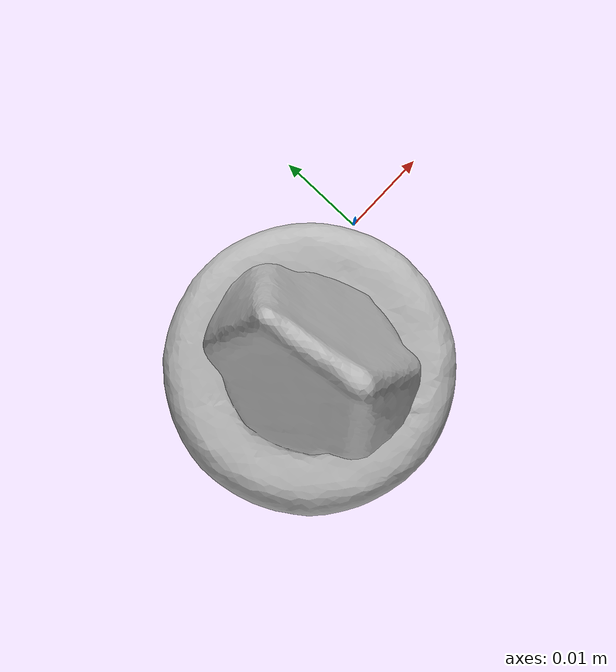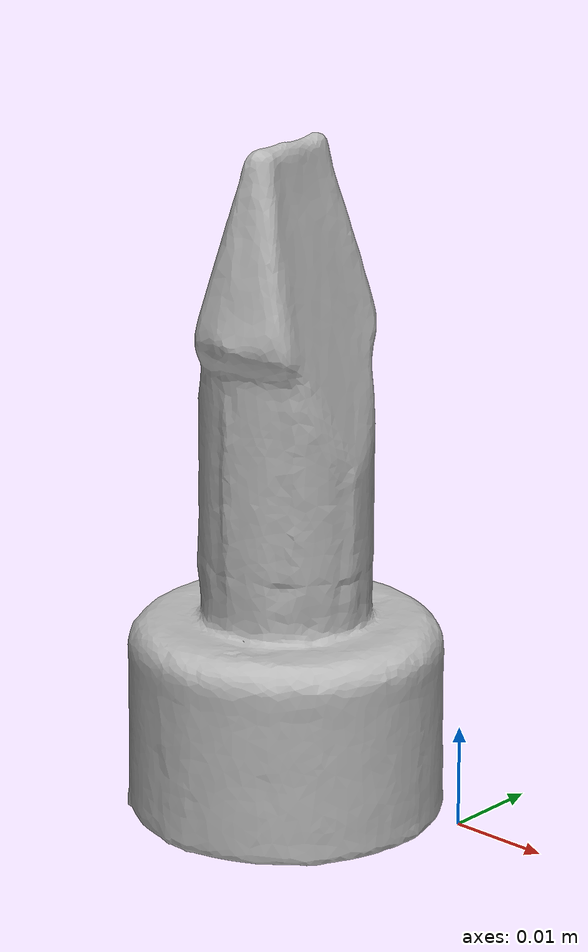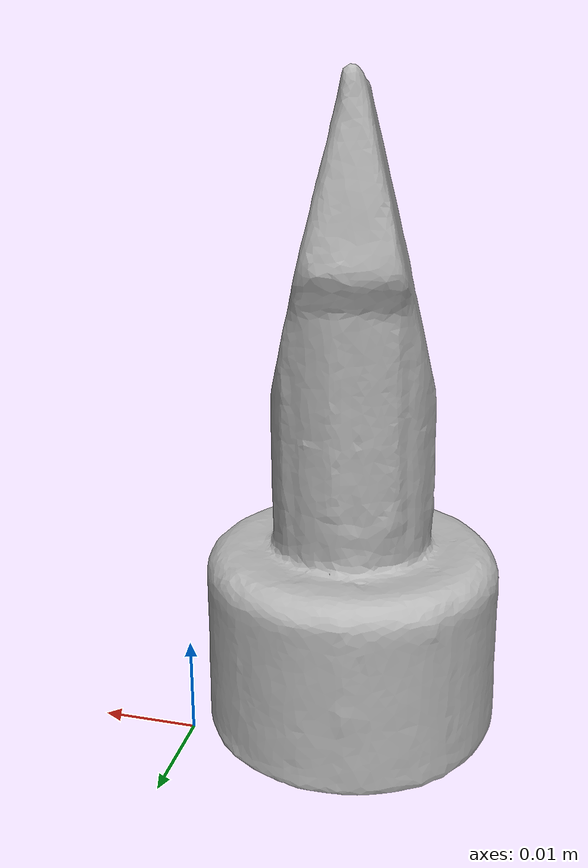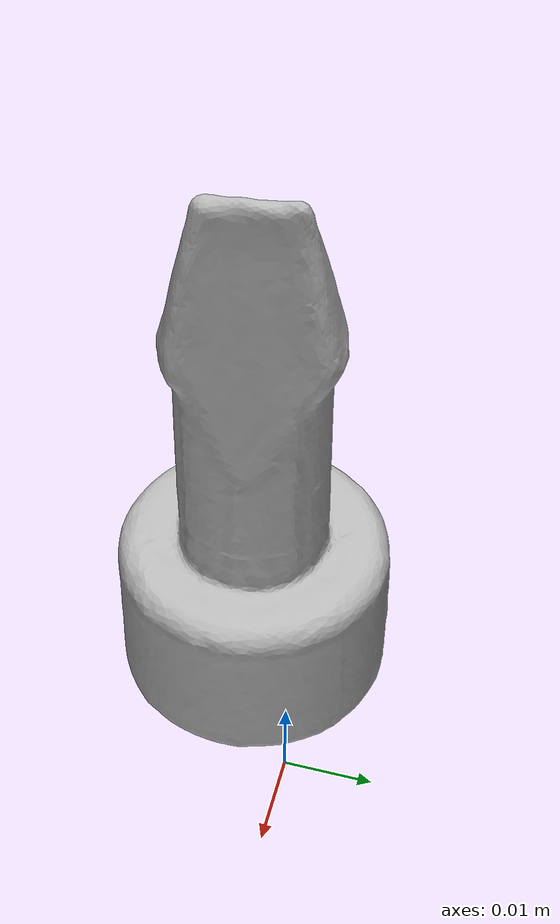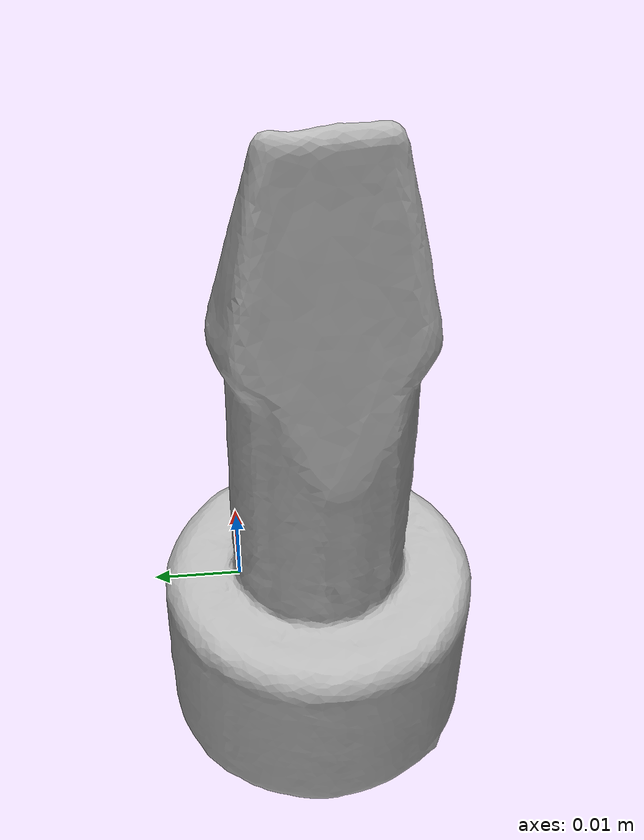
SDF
<?xml version='1.0'?>
<sdf version="1.4">
  <model name="e_toy_airplane">
    <static>false</static>
    <link name="link">
      <inertial>
        <pose>-0.015461052619458248 -0.007752454040306523 0.021859940254387183 0.003311842497510533 0.01040355423104165 0.177245034733478</pose>
        <mass>1.84087117481425e-05</mass>
        <inertia>
          <ixx>5.511554416878709e-09</ixx>
          <ixy>-2.1304240679424532e-26</ixy>
          <ixz>5.663710500989139e-25</ixz>
          <iyy>5.468879870174321e-09</iyy>
          <iyz>-3.0676272233362555e-25</iyz>
          <izz>1.6889584451051366e-09</izz>
        </inertia>
      </inertial>
      <collision name="collision">
        <geometry>
          <mesh>
            <!-- Use a downsampled mesh for collisions -->
            <uri>model://072-e_toy_airplane/google_16k/072-e_toy_airplane.obj</uri>
            </mesh>
        </geometry>
        <surface>
          <friction>
            <ode>
              <mu>0.9</mu>
              <mu2>0.9</mu2>
            </ode>
          </friction>
          <contact>
            <ode>
              <kp>1000000000000.0</kp>
              <kd>1</kd>
              <min_depth>0.0001</min_depth>
              <max_vel>0.01</max_vel>
            </ode>
          </contact>
          <bounce>
            <restitution_coefficient>0.1</restitution_coefficient>
            <threshold>1000.0</threshold>
          </bounce>
        </surface>
      </collision>
      <visual name="visual">
        <geometry>
          <mesh>
            <uri>model://072-e_toy_airplane/google_16k/072-e_toy_airplane.dae</uri>
            </mesh>
        </geometry>
      </visual>
    </link>
  </model>
</sdf>
